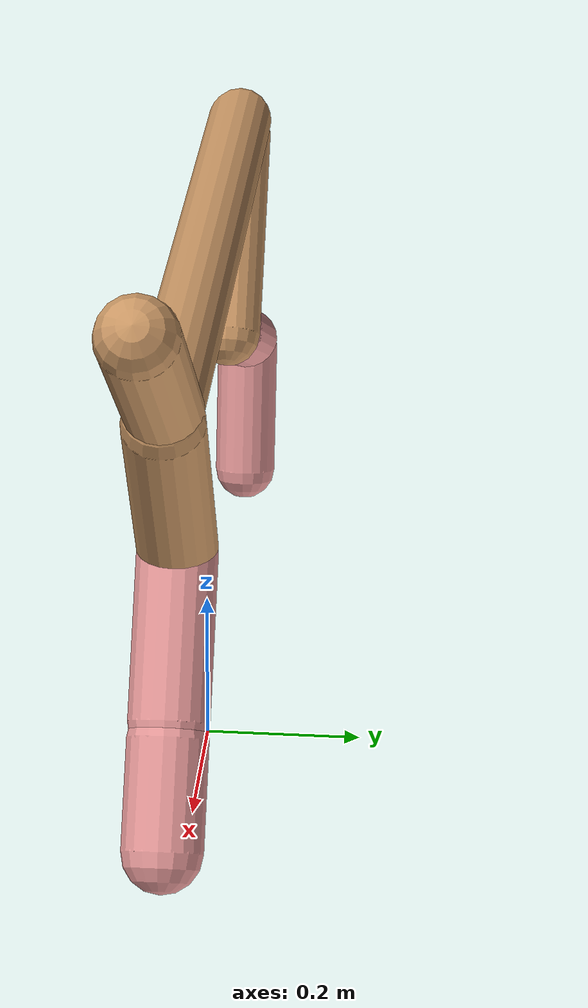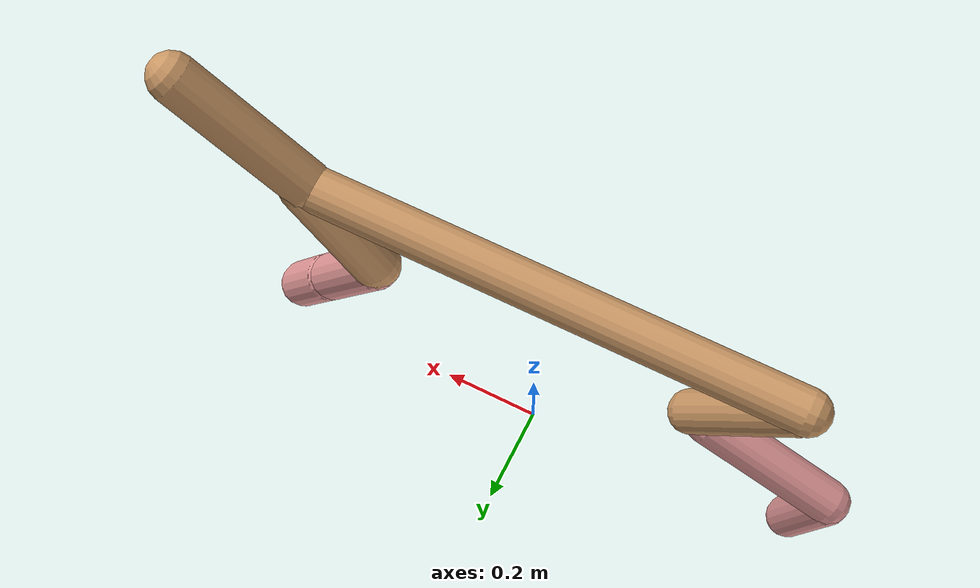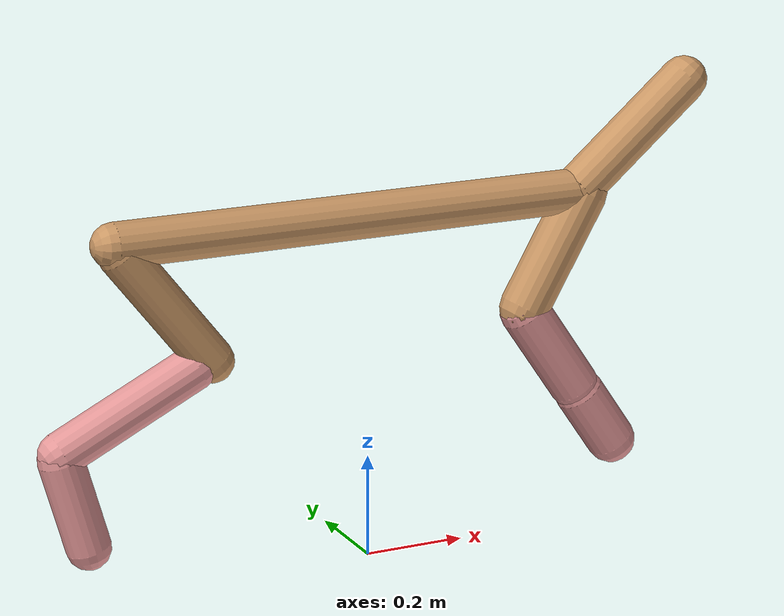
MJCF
<mujoco model="cheetah">
  <compiler angle="radian" coordinate="local" inertiafromgeom="true" settotalmass="14" />
  <default>
    <joint armature=".1" damping=".01" limited="true" solimplimit="0 .8 .03" solreflimit=".02 1" stiffness="8" />
    <geom conaffinity="0" condim="3" contype="1" friction="0.8 .1 .1" rgba="0.8 0.6 .4 1" solimp="0.0 0.8 0.01" solref="0.02 1" />
    <motor ctrllimited="true" ctrlrange="-1 1" />
  </default>
  <size nstack="300000" nuser_geom="1" />
  <option gravity="0 0 -9.81" timestep="0.01" />
  <worldbody>
    <body name="torso" pos="0.0 0.0 0.6740720341799179">
      <joint armature="0" axis="1 0 0" damping="0" limited="false" name="ignorex" pos="0 0 0" stiffness="0" type="slide" />
      <joint armature="0" axis="0 0 1" damping="0" limited="false" name="ignorez" pos="0 0 0" stiffness="0" type="slide" />
      <joint armature="0" axis="0 1 0" damping="0" limited="false" name="ignorey" pos="0 0 0" stiffness="0" type="hinge" />
      <geom fromto="-0.5 0.0 0.0 0.46127900772996605 0.0 0.0" name="torso" size="0.04281600538261045" type="capsule" />
      <geom axisangle="0 1 0 .87" name="head" pos="0.561279007729966 0.0 0.1" size="0.04586192254217179 0.15" type="capsule" />

      <body name="bthigh" pos="-.5 0 0">
        <joint axis="0 1 0" damping="6" name="bthigh" pos="0 0 0" range="-.52 1.05" stiffness="240" type="hinge" />
        <geom axisangle="0 1 0 -3.8" name="bthigh" pos="0.09805742274044082 0.0 -0.12747464956257307" size="0.042659209317777814 0.14181393640346449" type="capsule" />
        <body name="bshin" pos="0.15611484548088164 0.0 -0.24494929912514615">
          <joint axis="0 1 0" damping="4.5" name="bshin" pos="0 0 0" range="-.785 .785" stiffness="180" type="hinge" />
          <geom axisangle="0 1 0 -2.03" name="bshin" pos="-0.13705203250379688 0.0 -0.06852601625189844" rgba="0.9 0.6 0.6 1" size="0.042659209317777814 0.14670407214151499" type="capsule" />
          <body name="bfoot" pos="-0.27410406500759377 0.0 -0.13705203250379688">
            <joint axis="0 1 0" damping="3" name="bfoot" pos="0 0 0" range="-.4 .785" stiffness="120" type="hinge" />
            <geom axisangle="0 1 0 -.27" name="bfoot" pos="0.02938972261489958 0.0 -0.09502676978817531" rgba="0.9 0.6 0.6 1" size="0.042659209317777814 0.0919345518753494" type="capsule" />
            <inertial mass="10" />
          </body>
        </body>
      </body>
      <body name="fthigh" pos="0.461279007729966 0.0 0.0">
        <joint axis="0 1 0" damping="4.5" name="fthigh" pos="0 0 0" range="-1.5 0.8" stiffness="180" type="hinge" />
        <geom axisangle="0 1 0 .52" name="fthigh" pos="-0.0659606346864949 0.0 -0.11307537374827697" size="0.048319124281477624 0.12498333480417202" type="capsule" />
        <body name="fshin" pos="-0.1319212693729898 0.0 -0.22615074749655395">
          <joint axis="0 1 0" damping="3" name="fshin" pos="0 0 0" range="-1.2 1.1" stiffness="120" type="hinge" />
          <geom axisangle="0 1 0 -.6" name="fshin" pos="0.06125917093968457 0.0 -0.08482039053187093" rgba="0.9 0.6 0.6 1" size="0.048319124281477624 0.09961077811460325" type="capsule" />
          <body name="ffoot" pos="0.12251834187936914 0.0 -0.16964078106374186">
            <joint axis="0 1 0" damping="1.5" name="ffoot" pos="0 0 0" range="-3.1 -0.3" stiffness="60" type="hinge" />
            <geom axisangle="0 1 0 -.6" name="ffoot" pos="0.042718382862282786 0.0 -0.06645081778577323" rgba="0.9 0.6 0.6 1" size="0.048319124281477624 0.06578070252851159" type="capsule" />
            <inertial mass="10" />
          </body>
        </body>
      </body>
    </body>
  </worldbody>
  <actuator>
    <motor gear="120" joint="bthigh" name="bthigh" />
    <motor gear="90" joint="bshin" name="bshin" />
    <motor gear="60" joint="bfoot" name="bfoot" />
    <motor gear="120" joint="fthigh" name="fthigh" />
    <motor gear="60" joint="fshin" name="fshin" />
    <motor gear="30" joint="ffoot" name="ffoot" />
  </actuator>
</mujoco>
